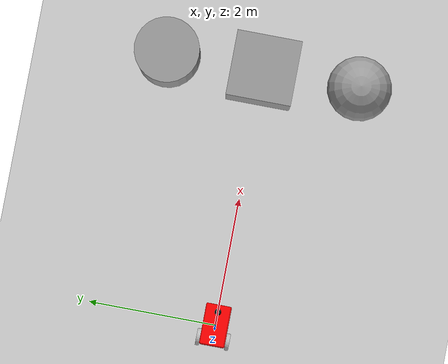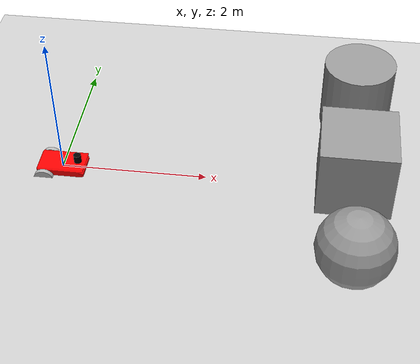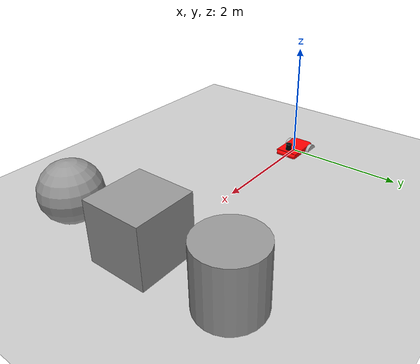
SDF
<sdf version="1.7">
 <world name="default">
  <light name="sun" type="directional">
   <pose>0 0 10 0 -0 0</pose>
   <diffuse>0.8 0.8 0.8 1</diffuse>
   <specular>0.2 0.2 0.2 1</specular>
   <attenuation>
    <range>1000</range>
    <constant>0.9</constant>
    <linear>0.01</linear>
    <quadratic>0.001</quadratic>
   </attenuation>
   <direction>-0.5 0.1 -0.9</direction>
   <spot><inner_angle>0</inner_angle><outer_angle>0</outer_angle><falloff>0</falloff></spot>
  </light>
  <model name="ground_plane">
   <static>1</static>
   <link name="link">
    <collision name="collision">
     <geometry><plane><normal>0 0 1</normal><size>100 100</size></plane></geometry>
     <surface>
      <contact><collide_bitmask>65535</collide_bitmask></contact>
      <friction><ode><mu>100</mu><mu2>50</mu2></ode></friction>
     </surface>
    </collision>
    <visual name="visual">
     <cast_shadows>0</cast_shadows>
     <geometry><plane><normal>0 0 1</normal><size>100 100</size></plane></geometry>
     <material>
      <script><uri>file://media/materials/scripts/gazebo.material</uri><name>Gazebo/Grey</name></script>
     </material>
    </visual>
   </link>
  </model>
  <gravity>0 0 -9.8</gravity>
  <magnetic_field>6e-06 2.3e-05 -4.2e-05</magnetic_field>
  <atmosphere type="adiabatic"/>
  <physics type="ode">
   <max_step_size>0.001</max_step_size>
   <real_time_factor>1</real_time_factor>
   <real_time_update_rate>1000</real_time_update_rate>
  </physics>
  <scene><ambient>0.4 0.4 0.4 1</ambient><background>0.7 0.7 0.7 1</background><shadows>1</shadows></scene>
  <spherical_coordinates>
   <surface_model>EARTH_WGS84</surface_model>
   <latitude_deg>0</latitude_deg>
   <longitude_deg>0</longitude_deg>
   <elevation>0</elevation>
   <heading_deg>0</heading_deg>
  </spherical_coordinates>
  <model name="unit_box">
   <pose>4 0 0.499995 0 1e-05 0</pose>
   <link name="link">
    <inertial>
     <mass>1</mass>
     <inertia>
      <ixx>0.166667</ixx>
      <ixy>0</ixy>
      <ixz>0</ixz>
      <iyy>0.166667</iyy>
      <iyz>0</iyz>
      <izz>0.166667</izz>
     </inertia>
    </inertial>
    <visual name="visual">
     <geometry><box><size>1 1 1</size></box></geometry>
     <material>
      <script><name>Gazebo/Grey</name><uri>file://media/materials/scripts/gazebo.material</uri></script>
      <shader type="pixel"><normal_map>__default__</normal_map></shader>
     </material>
    </visual>
    <collision name="collision">
     <laser_retro>0.5</laser_retro>
     <geometry><box><size>1 1 1</size></box></geometry>
     <surface>
      <friction>
       <ode><mu>1</mu><mu2>1</mu2><fdir1>0 0 0</fdir1><slip1>0</slip1><slip2>0</slip2></ode>
       <torsional>
        <coefficient>1</coefficient>
        <patch_radius>0</patch_radius>
        <surface_radius>0</surface_radius>
        <use_patch_radius>1</use_patch_radius>
        <ode><slip>0</slip></ode>
       </torsional>
      </friction>
      <bounce><restitution_coefficient>0</restitution_coefficient><threshold>1e+06</threshold></bounce>
      <contact>
       <collide_without_contact>0</collide_without_contact>
       <collide_without_contact_bitmask>1</collide_without_contact_bitmask>
       <collide_bitmask>1</collide_bitmask>
       <ode>
        <soft_cfm>0</soft_cfm>
        <soft_erp>0.2</soft_erp>
        <kp>1e+13</kp>
        <kd>1</kd>
        <max_vel>0.01</max_vel>
        <min_depth>0</min_depth>
       </ode>
       <bullet>
        <split_impulse>1</split_impulse>
        <split_impulse_penetration_threshold>-0.01</split_impulse_penetration_threshold>
        <soft_cfm>0</soft_cfm>
        <soft_erp>0.2</soft_erp>
        <kp>1e+13</kp>
        <kd>1</kd>
       </bullet>
      </contact>
     </surface>
    </collision>
   </link>
   <static>0</static>
  </model>
  <model name="unit_sphere">
   <pose>4 -1.5 0.5 0 -0 0</pose>
   <link name="link">
    <inertial>
     <mass>1</mass>
     <inertia><ixx>0.1</ixx><ixy>0</ixy><ixz>0</ixz><iyy>0.1</iyy><iyz>0</iyz><izz>0.1</izz></inertia>
    </inertial>
    <visual name="visual">
     <geometry><sphere><radius>0.5</radius></sphere></geometry>
     <material>
      <script><name>Gazebo/Grey</name><uri>file://media/materials/scripts/gazebo.material</uri></script>
      <shader type="pixel"><normal_map>__default__</normal_map></shader>
     </material>
    </visual>
    <collision name="collision">
     <laser_retro>1</laser_retro>
     <geometry><sphere><radius>0.5</radius></sphere></geometry>
     <surface>
      <friction>
       <ode><mu>1</mu><mu2>1</mu2><fdir1>0 0 0</fdir1><slip1>0</slip1><slip2>0</slip2></ode>
       <torsional>
        <coefficient>1</coefficient>
        <patch_radius>0</patch_radius>
        <surface_radius>0</surface_radius>
        <use_patch_radius>1</use_patch_radius>
        <ode><slip>0</slip></ode>
       </torsional>
      </friction>
      <bounce><restitution_coefficient>0</restitution_coefficient><threshold>1e+06</threshold></bounce>
      <contact>
       <collide_without_contact>0</collide_without_contact>
       <collide_without_contact_bitmask>1</collide_without_contact_bitmask>
       <collide_bitmask>1</collide_bitmask>
       <ode>
        <soft_cfm>0</soft_cfm>
        <soft_erp>0.2</soft_erp>
        <kp>1e+13</kp>
        <kd>1</kd>
        <max_vel>0.01</max_vel>
        <min_depth>0</min_depth>
       </ode>
       <bullet>
        <split_impulse>1</split_impulse>
        <split_impulse_penetration_threshold>-0.01</split_impulse_penetration_threshold>
        <soft_cfm>0</soft_cfm>
        <soft_erp>0.2</soft_erp>
        <kp>1e+13</kp>
        <kd>1</kd>
       </bullet>
      </contact>
     </surface>
    </collision>
   </link>
   <static>0</static>
  </model>
  <model name="unit_cylinder">
   <pose>4 1.5 0.499993 -4e-06 -4e-06 -0</pose>
   <link name="link">
    <inertial>
     <mass>1</mass>
     <inertia><ixx>0.145833</ixx><ixy>0</ixy><ixz>0</ixz><iyy>0.145833</iyy><iyz>0</iyz><izz>0.125</izz></inertia>
    </inertial>
    <collision name="collision">
     <geometry><cylinder><radius>0.5</radius><length>1</length></cylinder></geometry>
    </collision>
    <visual name="visual">
     <geometry><cylinder><radius>0.5</radius><length>1</length></cylinder></geometry>
     <material>
      <script><name>Gazebo/Grey</name><uri>file://media/materials/scripts/gazebo.material</uri></script>
     </material>
    </visual>
   </link>
  </model>
  <light name="user_point_light_0" type="point">
   <pose>-0.111921 -0.040186 1 0 -0 0</pose>
   <diffuse>0.5 0.5 0.5 1</diffuse>
   <specular>0.1 0.1 0.1 1</specular>
   <attenuation>
    <range>20</range>
    <constant>0.5</constant>
    <linear>0.01</linear>
    <quadratic>0.001</quadratic>
   </attenuation>
   <cast_shadows>0</cast_shadows>
   <direction>0 0 -1</direction>
  </light>
  <include><uri>model://basic_mobile_bot_description</uri></include>
 </world>
</sdf>

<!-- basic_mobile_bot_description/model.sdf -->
<sdf version="1.5">
  <model name="basic_mobile_bot">
  <static>false</static>

  <!-- ****************** ROBOT BASE FOOTPRINT ***************************  -->
  <pose>0.0 0.0 0.0 0.0 0.0 0.0</pose>
  <link name="base_footprint"/>

  <!-- ********************** ROBOT BASE *********************************  -->
  <link name="base_link">

    <collision name="base_collision">
      <pose>0 0 0.1 0 0 0</pose>
      <geometry>
        <box>
          <size>0.70 0.39 0.20</size>
        </box>
      </geometry>
    </collision>

    <visual name="base_visual">
      <pose>0 0 -0.05 1.5707963267949 0 3.141592654</pose>
      <geometry>
        <mesh>
          <uri>model://basic_mobile_bot_description/meshes/robot_base.stl</uri>
          <scale>1.0 1.0 1.0</scale>
        </mesh>
      </geometry>
      <material>
        <ambient>1.0 0.0 0.0 1.0</ambient>
        <diffuse>1.0 0.0 0.0 1.0</diffuse>
        <specular>0.0 0.0 0.0 1.0</specular>
        <emissive>0.0 0.0 0.0 1.0</emissive>
      </material>
    </visual>
  </link>

  <!-- *********************** IMU SENSOR SETUP **************************  -->
  <link name="imu_link">
    <gravity>true</gravity>
    <sensor name="bmb_imu" type="imu">
      <always_on>true</always_on>
      <update_rate>100</update_rate>
      <visualize>true</visualize>
      <imu>
        <orientation>
          <x>
            <noise type="gaussian">
              <mean>0.0</mean>
              <stddev>2e-3</stddev>
            </noise>
          </x>
          <y>
            <noise type="gaussian">
              <mean>0.0</mean>
              <stddev>2e-3</stddev>
            </noise>
          </y>
          <z>
            <noise type="gaussian">
              <mean>0.0</mean>
              <stddev>2e-3</stddev>
            </noise>
          </z>
        </orientation>
        <angular_velocity>
          <x>
            <noise type="gaussian">
              <mean>0.0</mean>
              <stddev>2e-4</stddev>
            </noise>
          </x>
          <y>
            <noise type="gaussian">
              <mean>0.0</mean>
              <stddev>2e-4</stddev>
            </noise>
          </y>
          <z>
            <noise type="gaussian">
              <mean>0.0</mean>
              <stddev>2e-4</stddev>
            </noise>
          </z>
        </angular_velocity>
        <linear_acceleration>
          <x>
            <noise type="gaussian">
              <mean>0.0</mean>
              <stddev>1.7e-2</stddev>
            </noise>
          </x>
          <y>
            <noise type="gaussian">
              <mean>0.0</mean>
              <stddev>1.7e-2</stddev>
            </noise>
          </y>
          <z>
            <noise type="gaussian">
              <mean>0.0</mean>
              <stddev>1.7e-2</stddev>
            </noise>
          </z>
        </linear_acceleration>
      </imu>
      <plugin name="basic_mobile_bot_imu" filename="libgazebo_ros_imu_sensor.so">
        <initial_orientation_as_reference>false</initial_orientation_as_reference>
        <frame_name>imu_link</frame_name>
        <ros>
          <namespace>/imu</namespace>
          <remapping>~/out:=data</remapping>
        </ros>
      </plugin>
    </sensor>
  </link>

  <!-- *********************** GPS SETUP *********************************  -->
  <link name="gps_link">
    <sensor name="bmb_gps" type="gps">
      <always_on>true</always_on>
      <update_rate>10.0</update_rate>
      <gps>
        <position_sensing>
          <horizontal>
            <noise type="gaussian">
              <mean>0.0</mean>
              <stddev>1e-2</stddev>
            </noise>
          </horizontal>
          <vertical>
            <noise type="gaussian">
              <mean>0.0</mean>
              <stddev>1</stddev>
            </noise>
          </vertical>
        </position_sensing>
      </gps>
      <plugin name="basic_mobile_bot_gps" filename="libgazebo_ros_gps_sensor.so">
        <ros>
          <remapping>~/out:=gps/fix</remapping>
        </ros>
      </plugin>
    </sensor>
  </link>

  <!-- ****************************** LIDAR *****************************    -->
  <link name="lidar_link">
    <inertial>
      <pose>0.215 0 0.13 0 0 0</pose>
      <inertia>
        <ixx>0.001</ixx>
        <ixy>0.000</ixy>
        <ixz>0.000</ixz>
        <iyy>0.001</iyy>
        <iyz>0.000</iyz>
        <izz>0.001</izz>
      </inertia>
      <mass>0.114</mass>
    </inertial>

    <collision name="lidar_collision">
      <pose>0.215 0 0.13 0 0 0</pose>
      <geometry>
        <cylinder>
          <radius>0.0508</radius>
          <length>0.18</length>
        </cylinder>
      </geometry>
    </collision>

    <visual name="lidar_visual">
      <pose>0.215 0 0.13 0 0 0</pose>
      <geometry>
        <cylinder>
          <radius>0.0508</radius>
          <length>0.18</length>
        </cylinder>
      </geometry>
      <material>
        <ambient>0.0 0.0 0.0 1.0</ambient>
        <diffuse>0.0 0.0 0.0 1.0</diffuse>
        <specular>0.0 0.0 0.0 1.0</specular>
        <emissive>0.0 0.0 0.0 1.0</emissive>
      </material>
    </visual>

    <sensor name="lidar" type="ray">
      <pose>0.215 0 0.215 0 0 0</pose>
      <always_on>true</always_on>
      <visualize>true</visualize>
      <update_rate>25</update_rate>
      <ray>
        <scan>
          <horizontal>
            <samples>40</samples>
            <resolution>1.000000</resolution>
            <min_angle>-0.12</min_angle>
            <max_angle>0.12</max_angle>
          </horizontal>
          <vertical>
          <samples>40</samples>
          <resolution>1.000000</resolution>
          <min_angle>-0.12</min_angle>
          <max_angle>0.12</max_angle>
        </vertical>
        </scan>
        <range>
          <min>0.3</min>
          <max>15.0</max>
          <resolution>0.015</resolution>
        </range>
         <noise>
            <type>gaussian</type>
            <mean>0.0</mean>
            <stddev>0.01</stddev>
          </noise>
      </ray>
      <plugin name="scan" filename="libgazebo_ros_ray_sensor.so">
        <ros>
          <remapping>~/out:=scan</remapping>
        </ros>
        <output_type>sensor_msgs/PointCloud2</output_type>
        <frame_name>lidar_link</frame_name>
      </plugin>
    </sensor>
  </link>

  <!-- *********************** DRIVE WHEELS ******************************  -->
  <link name="drivewhl_l_link">
    <pose>-0.221 0.23 -0.05 0 1.570796 1.570796</pose>

    <collision name="drivewhl_l_collision">
      <geometry>
        <cylinder>
          <radius>0.14</radius>
          <length>0.06</length>
        </cylinder>
      </geometry>
    </collision>

    <visual name="drivewhl_l_visual">
      <geometry>
        <cylinder>
          <radius>0.14</radius>
          <length>0.06</length>
        </cylinder>
      </geometry>
    </visual>
  </link>

  <link name="drivewhl_r_link">
    <pose>-0.221 -0.23 -0.05 0 1.570796 1.570796</pose>

    <collision name="drivewhl_r_collision">
      <geometry>
        <cylinder>
          <radius>0.14</radius>
          <length>0.06</length>
        </cylinder>
      </geometry>
    </collision>

    <visual name="drivewhl_r_visual">
      <geometry>
        <cylinder>
          <radius>0.14</radius>
          <length>0.06</length>
        </cylinder>
      </geometry>
    </visual>
  </link>

  <!-- *********************** CASTER WHEEL ******************************  -->
  <link name='front_caster'>
    <pose>0.217 0 -0.1 0 0 0</pose>
    <inertial>
      <inertia>
        <ixx>0.001</ixx>
        <ixy>0.000</ixy>
        <ixz>0.000</ixz>
        <iyy>0.001</iyy>
        <iyz>0.000</iyz>
        <izz>0.001</izz>
      </inertia>
      <mass>70.0</mass>
    </inertial>
    <collision name='collision'>
      <geometry>
        <sphere>
          <radius>0.09</radius>
        </sphere>
      </geometry>
      <surface>
        <friction>
          <ode>
            <mu>0.01</mu>
            <mu2>0.01</mu2>
            <slip1>1.0</slip1>
            <slip2>1.0</slip2>
          </ode>
        </friction>
      </surface>
    </collision>
    <visual name="front_caster_visual">
      <geometry>
        <sphere>
          <radius>0.09</radius>
        </sphere>
      </geometry>
    </visual>
  </link>

  <!-- ************************ JOINTS ***********************************  -->
  <!-- Pose of the joint is the same as the child link frame -->
  <!-- Axis is the axis of rotation relative to the child link frame -->

  <joint name="base_joint" type="fixed">
    <parent>base_footprint</parent>
    <child>base_link</child>
    <pose>0 0 0 0 0 0</pose>
  </joint>

  <joint name="drivewhl_l_joint" type="revolute">
    <parent>base_link</parent>
    <child>drivewhl_l_link</child>
    <pose>0 0 0 0 0 0</pose>
    <axis>
      <xyz>0 0 1</xyz>
    </axis>
  </joint>

  <joint name="drivewhl_r_joint" type="revolute">
    <parent>base_link</parent>
    <child>drivewhl_r_link</child>
    <pose>0 0 0 0 0 0</pose>
    <axis>
      <xyz>0 0 1</xyz>
    </axis>
  </joint>

  <joint name='caster_joint' type='fixed'>
    <parent>base_link</parent>
    <child>front_caster</child>
    <pose>0 0 0 0 0 0</pose>
  </joint>

  <joint name="imu_joint" type="fixed">
    <parent>base_link</parent>
    <child>imu_link</child>
    <pose>0 0 0 0 0 0</pose>
  </joint>

  <joint name="gps_joint" type="fixed">
    <parent>base_link</parent>
    <child>gps_link</child>
    <pose>0 0 0 0 0 0</pose>
  </joint>

  <joint name="lidar_joint" type="fixed">
    <parent>base_link</parent>
    <child>lidar_link</child>
    <pose>0 0 0 0 0 0</pose>
  </joint>

 <!-- *********************** WHEEL ODOMETRY ***************************    -->
  <plugin name="basic_mobile_bot_diff_drive" filename="libgazebo_ros_diff_drive.so">

    <update_rate>30</update_rate>

    <!-- wheels -->
    <left_joint>drivewhl_l_joint</left_joint>
    <right_joint>drivewhl_r_joint</right_joint>

    <!-- kinematics -->
    <wheel_separation>0.52</wheel_separation>
    <wheel_diameter>0.28</wheel_diameter>

    <!-- limits -->
    <max_wheel_torque>20</max_wheel_torque>
    <max_wheel_acceleration>1.0</max_wheel_acceleration>

    <!-- Receive velocity commands on this ROS topic -->
    <command_topic>cmd_vel</command_topic>

    <!-- output -->
    <!-- When false, publish no wheel odometry data to a ROS topic -->
    <publish_odom>true</publish_odom>

    <!-- When true, publish coordinate transform from odom to base_footprint -->
    <!-- I usually use the robot_localization package to publish this transform -->
    <publish_odom_tf>false</publish_odom_tf>

    <!-- When true, publish coordinate transform from base_link to the wheels -->
    <!-- The robot_state_publisher package is often used to publish this transform -->
    <publish_wheel_tf>false</publish_wheel_tf>

    <odometry_topic>odom</odometry_topic>
    <odometry_frame>odom</odometry_frame>
    <robot_base_frame>base_footprint</robot_base_frame>

    <!-- Odometry source, 0 for ENCODER, 1 for WORLD, defaults to WORLD -->
    <odometry_source>1</odometry_source>

    <!-- Change the ROS topic we will publish the odometry data to -->
    <ros>
      <remapping>odom:=wheel/odometry</remapping>
    </ros>

  </plugin>

 <!-- *********************** JOINT STATE PUBLISHER *********************   -->

  <plugin name="basic_mobile_bot_joint_state" filename="libgazebo_ros_joint_state_publisher.so">
    <ros>
      <remapping>~/out:=joint_states</remapping>
    </ros>
    <update_rate>30</update_rate>
    <joint_name>drivewhl_l_joint</joint_name>
    <joint_name>drivewhl_r_joint</joint_name>
  </plugin>

  </model>
</sdf>
